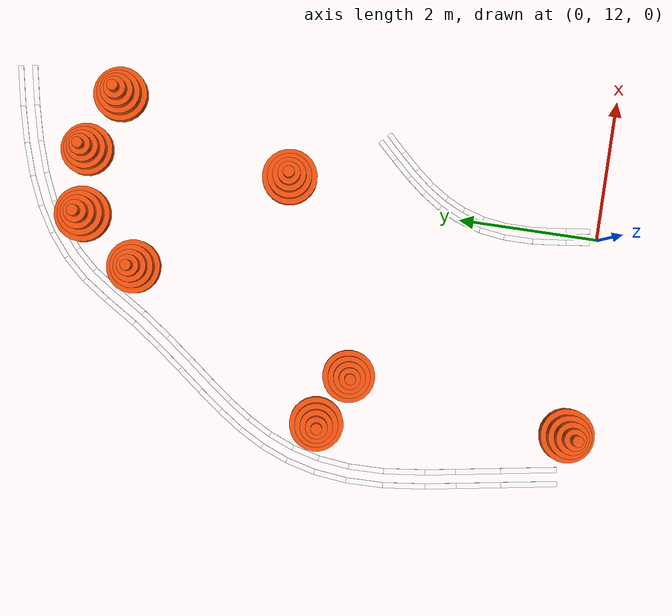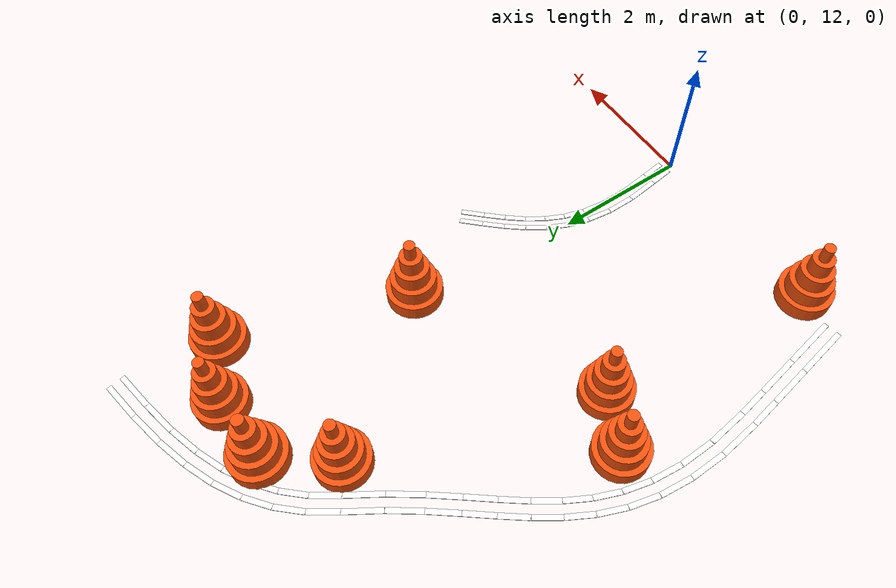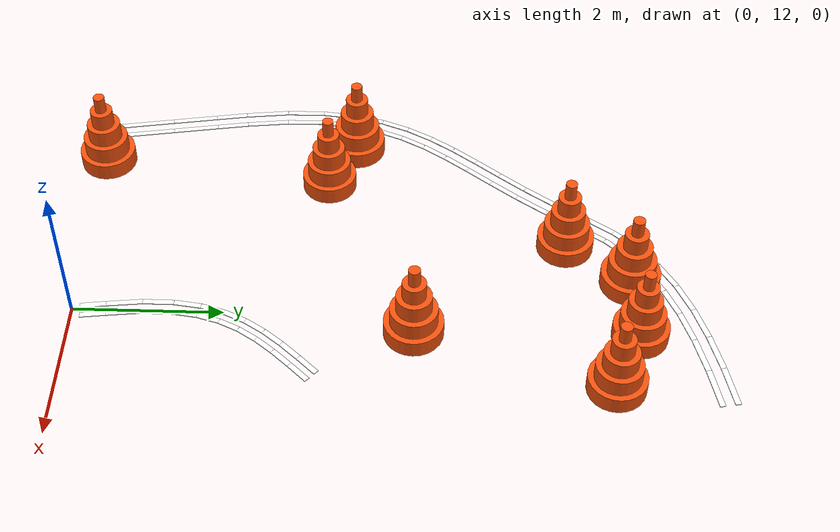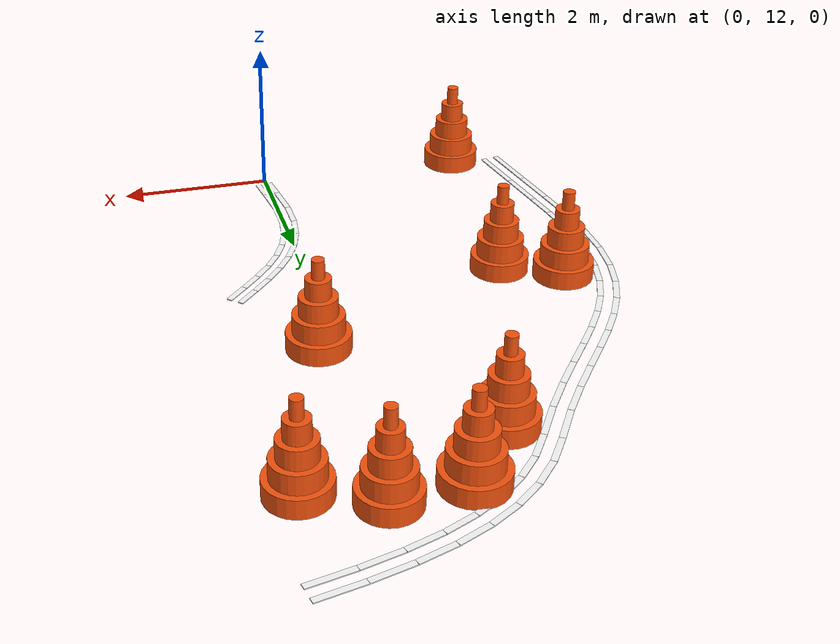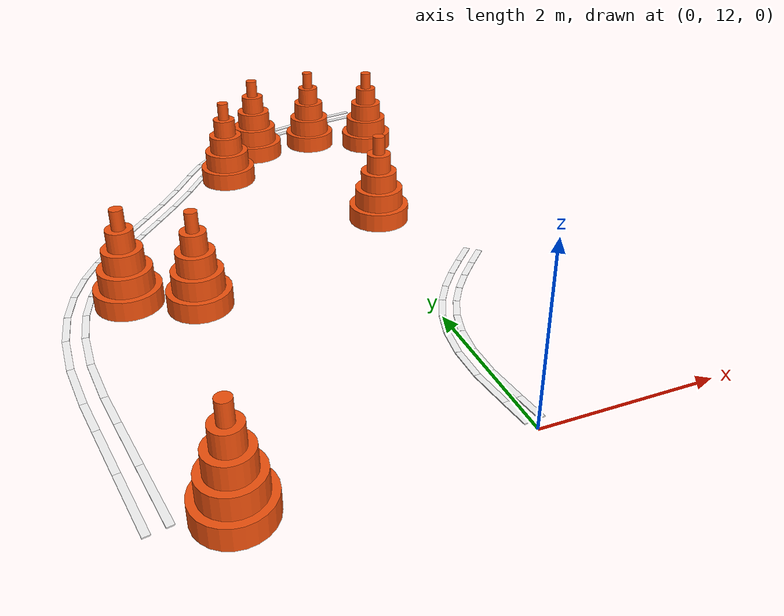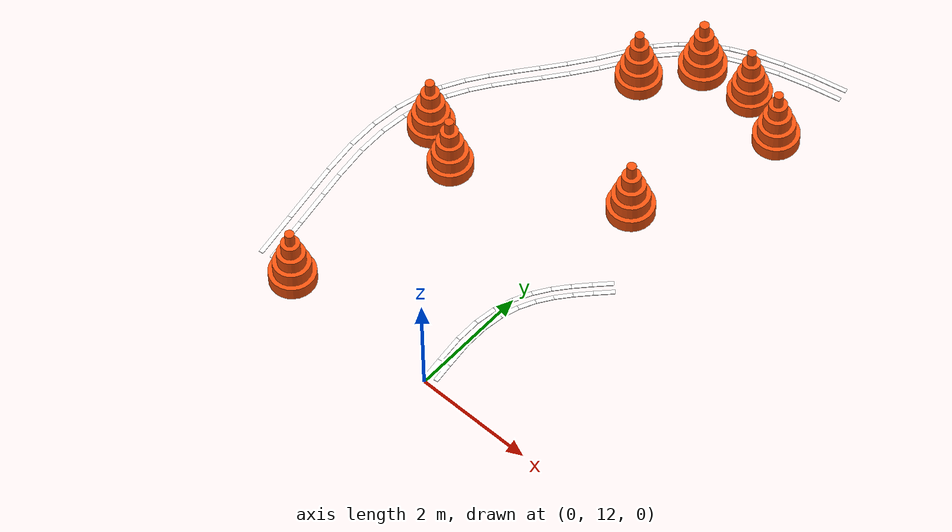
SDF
<sdf version="1.9">
 <world name="igvc_competition">
  <model name="Line_001_0130">
   <static>1</static>
   <pose>1.0309 20.2764 0.011 0 0 -2.937510</pose>
   <link name="link">
    <visual name="visual">
     <geometry><box><size>0.5719 0.0762 0.012</size></box></geometry>
     <material>
      <ambient>0.98 0.98 0.98 1</ambient>
      <diffuse>0.98 0.98 0.98 1</diffuse>
      <specular>0.05 0.05 0.05 1</specular>
      <emissive>0.9 0.9 0.9 1</emissive>
     </material>
    </visual>
   </link>
  </model>
  <model name="Line_001_0131">
   <static>1</static>
   <pose>0.9896 20.4721 0.011 0 0 -2.937470</pose>
   <link name="link">
    <visual name="visual">
     <geometry><box><size>0.5801 0.0762 0.012</size></box></geometry>
     <material>
      <ambient>0.98 0.98 0.98 1</ambient>
      <diffuse>0.98 0.98 0.98 1</diffuse>
      <specular>0.05 0.05 0.05 1</specular>
      <emissive>0.9 0.9 0.9 1</emissive>
     </material>
    </visual>
   </link>
  </model>
  <model name="Line_001_0132">
   <static>1</static>
   <pose>0.5019 20.1538 0.011 0 0 -2.887424</pose>
   <link name="link">
    <visual name="visual">
     <geometry><box><size>0.5146 0.0762 0.012</size></box></geometry>
     <material>
      <ambient>0.98 0.98 0.98 1</ambient>
      <diffuse>0.98 0.98 0.98 1</diffuse>
      <specular>0.05 0.05 0.05 1</specular>
      <emissive>0.9 0.9 0.9 1</emissive>
     </material>
    </visual>
   </link>
  </model>
  <model name="Line_001_0133">
   <static>1</static>
   <pose>0.4506 20.3470 0.011 0 0 -2.887361</pose>
   <link name="link">
    <visual name="visual">
     <geometry><box><size>0.5268 0.0762 0.012</size></box></geometry>
     <material>
      <ambient>0.98 0.98 0.98 1</ambient>
      <diffuse>0.98 0.98 0.98 1</diffuse>
      <specular>0.05 0.05 0.05 1</specular>
      <emissive>0.9 0.9 0.9 1</emissive>
     </material>
    </visual>
   </link>
  </model>
  <model name="Line_001_0134">
   <static>1</static>
   <pose>0.0327 20.0149 0.011 0 0 -2.816711</pose>
   <link name="link">
    <visual name="visual">
     <geometry><box><size>0.4646 0.0762 0.012</size></box></geometry>
     <material>
      <ambient>0.98 0.98 0.98 1</ambient>
      <diffuse>0.98 0.98 0.98 1</diffuse>
      <specular>0.05 0.05 0.05 1</specular>
      <emissive>0.9 0.9 0.9 1</emissive>
     </material>
    </visual>
   </link>
  </model>
  <model name="Line_001_0135">
   <static>1</static>
   <pose>-0.0323 20.2039 0.011 0 0 -2.816227</pose>
   <link name="link">
    <visual name="visual">
     <geometry><box><size>0.4811 0.0762 0.012</size></box></geometry>
     <material>
      <ambient>0.98 0.98 0.98 1</ambient>
      <diffuse>0.98 0.98 0.98 1</diffuse>
      <specular>0.05 0.05 0.05 1</specular>
      <emissive>0.9 0.9 0.9 1</emissive>
     </material>
    </visual>
   </link>
  </model>
  <model name="Line_001_0136">
   <static>1</static>
   <pose>-0.3809 19.8544 0.011 0 0 -2.721355</pose>
   <link name="link">
    <visual name="visual">
     <geometry><box><size>0.4236 0.0762 0.012</size></box></geometry>
     <material>
      <ambient>0.98 0.98 0.98 1</ambient>
      <diffuse>0.98 0.98 0.98 1</diffuse>
      <specular>0.05 0.05 0.05 1</specular>
      <emissive>0.9 0.9 0.9 1</emissive>
     </material>
    </visual>
   </link>
  </model>
  <model name="Line_001_0137">
   <static>1</static>
   <pose>-0.4634 20.0362 0.011 0 0 -2.721178</pose>
   <link name="link">
    <visual name="visual">
     <geometry><box><size>0.4449 0.0762 0.012</size></box></geometry>
     <material>
      <ambient>0.98 0.98 0.98 1</ambient>
      <diffuse>0.98 0.98 0.98 1</diffuse>
      <specular>0.05 0.05 0.05 1</specular>
      <emissive>0.9 0.9 0.9 1</emissive>
     </material>
    </visual>
   </link>
  </model>
  <model name="Line_001_0138">
   <static>1</static>
   <pose>-0.7431 19.6668 0.011 0 0 -2.601783</pose>
   <link name="link">
    <visual name="visual">
     <geometry><box><size>0.3938 0.0762 0.012</size></box></geometry>
     <material>
      <ambient>0.98 0.98 0.98 1</ambient>
      <diffuse>0.98 0.98 0.98 1</diffuse>
      <specular>0.05 0.05 0.05 1</specular>
      <emissive>0.9 0.9 0.9 1</emissive>
     </material>
    </visual>
   </link>
  </model>
  <model name="Line_001_0139">
   <static>1</static>
   <pose>-0.8465 19.8375 0.011 0 0 -2.601500</pose>
   <link name="link">
    <visual name="visual">
     <geometry><box><size>0.4199 0.0762 0.012</size></box></geometry>
     <material>
      <ambient>0.98 0.98 0.98 1</ambient>
      <diffuse>0.98 0.98 0.98 1</diffuse>
      <specular>0.05 0.05 0.05 1</specular>
      <emissive>0.9 0.9 0.9 1</emissive>
     </material>
    </visual>
   </link>
  </model>
  <model name="Line_001_0140">
   <static>1</static>
   <pose>-1.0593 19.4466 0.011 0 0 -2.461902</pose>
   <link name="link">
    <visual name="visual">
     <geometry><box><size>0.3786 0.0762 0.012</size></box></geometry>
     <material>
      <ambient>0.98 0.98 0.98 1</ambient>
      <diffuse>0.98 0.98 0.98 1</diffuse>
      <specular>0.05 0.05 0.05 1</specular>
      <emissive>0.9 0.9 0.9 1</emissive>
     </material>
    </visual>
   </link>
  </model>
  <model name="Line_001_0141">
   <static>1</static>
   <pose>-1.1850 19.6014 0.011 0 0 -2.461716</pose>
   <link name="link">
    <visual name="visual">
     <geometry><box><size>0.4075 0.0762 0.012</size></box></geometry>
     <material>
      <ambient>0.98 0.98 0.98 1</ambient>
      <diffuse>0.98 0.98 0.98 1</diffuse>
      <specular>0.05 0.05 0.05 1</specular>
      <emissive>0.9 0.9 0.9 1</emissive>
     </material>
    </visual>
   </link>
  </model>
  <model name="Line_001_0142">
   <static>1</static>
   <pose>-1.3348 19.1875 0.011 0 0 -2.312259</pose>
   <link name="link">
    <visual name="visual">
     <geometry><box><size>0.3799 0.0762 0.012</size></box></geometry>
     <material>
      <ambient>0.98 0.98 0.98 1</ambient>
      <diffuse>0.98 0.98 0.98 1</diffuse>
      <specular>0.05 0.05 0.05 1</specular>
      <emissive>0.9 0.9 0.9 1</emissive>
     </material>
    </visual>
   </link>
  </model>
  <model name="Line_001_0143">
   <static>1</static>
   <pose>-1.4817 19.3224 0.011 0 0 -2.312473</pose>
   <link name="link">
    <visual name="visual">
     <geometry><box><size>0.4093 0.0762 0.012</size></box></geometry>
     <material>
      <ambient>0.98 0.98 0.98 1</ambient>
      <diffuse>0.98 0.98 0.98 1</diffuse>
      <specular>0.05 0.05 0.05 1</specular>
      <emissive>0.9 0.9 0.9 1</emissive>
     </material>
    </visual>
   </link>
  </model>
  <model name="Line_001_0144">
   <static>1</static>
   <pose>-1.5763 18.8806 0.011 0 0 -2.167054</pose>
   <link name="link">
    <visual name="visual">
     <geometry><box><size>0.4032 0.0762 0.012</size></box></geometry>
     <material>
      <ambient>0.98 0.98 0.98 1</ambient>
      <diffuse>0.98 0.98 0.98 1</diffuse>
      <specular>0.05 0.05 0.05 1</specular>
      <emissive>0.9 0.9 0.9 1</emissive>
     </material>
    </visual>
   </link>
  </model>
  <model name="Line_001_0145">
   <static>1</static>
   <pose>-1.7385 18.9975 0.011 0 0 -2.168350</pose>
   <link name="link">
    <visual name="visual">
     <geometry><box><size>0.4211 0.0762 0.012</size></box></geometry>
     <material>
      <ambient>0.98 0.98 0.98 1</ambient>
      <diffuse>0.98 0.98 0.98 1</diffuse>
      <specular>0.05 0.05 0.05 1</specular>
      <emissive>0.9 0.9 0.9 1</emissive>
     </material>
    </visual>
   </link>
  </model>
  <model name="Line_001_0146">
   <static>1</static>
   <pose>-1.8302 18.4903 0.011 0 0 -2.132908</pose>
   <link name="link">
    <visual name="visual">
     <geometry><box><size>0.5282 0.0762 0.012</size></box></geometry>
     <material>
      <ambient>0.98 0.98 0.98 1</ambient>
      <diffuse>0.98 0.98 0.98 1</diffuse>
      <specular>0.05 0.05 0.05 1</specular>
      <emissive>0.9 0.9 0.9 1</emissive>
     </material>
    </visual>
   </link>
  </model>
  <model name="Line_001_0147">
   <static>1</static>
   <pose>-1.9970 18.6007 0.011 0 0 -2.132599</pose>
   <link name="link">
    <visual name="visual">
     <geometry><box><size>0.5262 0.0762 0.012</size></box></geometry>
     <material>
      <ambient>0.98 0.98 0.98 1</ambient>
      <diffuse>0.98 0.98 0.98 1</diffuse>
      <specular>0.05 0.05 0.05 1</specular>
      <emissive>0.9 0.9 0.9 1</emissive>
     </material>
    </visual>
   </link>
  </model>
  <model name="Line_001_0148">
   <static>1</static>
   <pose>-2.1126 18.0675 0.011 0 0 -2.188171</pose>
   <link name="link">
    <visual name="visual">
     <geometry><box><size>0.4892 0.0762 0.012</size></box></geometry>
     <material>
      <ambient>0.98 0.98 0.98 1</ambient>
      <diffuse>0.98 0.98 0.98 1</diffuse>
      <specular>0.05 0.05 0.05 1</specular>
      <emissive>0.9 0.9 0.9 1</emissive>
     </material>
    </visual>
   </link>
  </model>
  <model name="Line_001_0149">
   <static>1</static>
   <pose>-2.2761 18.1824 0.011 0 0 -2.188333</pose>
   <link name="link">
    <visual name="visual">
     <geometry><box><size>0.4799 0.0762 0.012</size></box></geometry>
     <material>
      <ambient>0.98 0.98 0.98 1</ambient>
      <diffuse>0.98 0.98 0.98 1</diffuse>
      <specular>0.05 0.05 0.05 1</specular>
      <emissive>0.9 0.9 0.9 1</emissive>
     </material>
    </visual>
   </link>
  </model>
  <model name="Line_001_0150">
   <static>1</static>
   <pose>-2.3918 17.6885 0.011 0 0 -2.224955</pose>
   <link name="link">
    <visual name="visual">
     <geometry><box><size>0.4523 0.0762 0.012</size></box></geometry>
     <material>
      <ambient>0.98 0.98 0.98 1</ambient>
      <diffuse>0.98 0.98 0.98 1</diffuse>
      <specular>0.05 0.05 0.05 1</specular>
      <emissive>0.9 0.9 0.9 1</emissive>
     </material>
    </visual>
   </link>
  </model>
  <model name="Line_001_0151">
   <static>1</static>
   <pose>-2.5512 17.8093 0.011 0 0 -2.225116</pose>
   <link name="link">
    <visual name="visual">
     <geometry><box><size>0.4474 0.0762 0.012</size></box></geometry>
     <material>
      <ambient>0.98 0.98 0.98 1</ambient>
      <diffuse>0.98 0.98 0.98 1</diffuse>
      <specular>0.05 0.05 0.05 1</specular>
      <emissive>0.9 0.9 0.9 1</emissive>
     </material>
    </visual>
   </link>
  </model>
  <model name="Line_001_0152">
   <static>1</static>
   <pose>-2.6597 17.3434 0.011 0 0 -2.237019</pose>
   <link name="link">
    <visual name="visual">
     <geometry><box><size>0.4217 0.0762 0.012</size></box></geometry>
     <material>
      <ambient>0.98 0.98 0.98 1</ambient>
      <diffuse>0.98 0.98 0.98 1</diffuse>
      <specular>0.05 0.05 0.05 1</specular>
      <emissive>0.9 0.9 0.9 1</emissive>
     </material>
    </visual>
   </link>
  </model>
  <model name="Line_001_0153">
   <static>1</static>
   <pose>-2.8179 17.4657 0.011 0 0 -2.236885</pose>
   <link name="link">
    <visual name="visual">
     <geometry><box><size>0.4224 0.0762 0.012</size></box></geometry>
     <material>
      <ambient>0.98 0.98 0.98 1</ambient>
      <diffuse>0.98 0.98 0.98 1</diffuse>
      <specular>0.05 0.05 0.05 1</specular>
      <emissive>0.9 0.9 0.9 1</emissive>
     </material>
    </visual>
   </link>
  </model>
  <model name="Line_001_0154">
   <static>1</static>
   <pose>-2.9097 17.0194 0.011 0 0 -2.218179</pose>
   <link name="link">
    <visual name="visual">
     <geometry><box><size>0.3968 0.0762 0.012</size></box></geometry>
     <material>
      <ambient>0.98 0.98 0.98 1</ambient>
      <diffuse>0.98 0.98 0.98 1</diffuse>
      <specular>0.05 0.05 0.05 1</specular>
      <emissive>0.9 0.9 0.9 1</emissive>
     </material>
    </visual>
   </link>
  </model>
  <model name="Line_001_0155">
   <static>1</static>
   <pose>-3.0702 17.1385 0.011 0 0 -2.217861</pose>
   <link name="link">
    <visual name="visual">
     <geometry><box><size>0.4041 0.0762 0.012</size></box></geometry>
     <material>
      <ambient>0.98 0.98 0.98 1</ambient>
      <diffuse>0.98 0.98 0.98 1</diffuse>
      <specular>0.05 0.05 0.05 1</specular>
      <emissive>0.9 0.9 0.9 1</emissive>
     </material>
    </visual>
   </link>
  </model>
  <model name="Line_001_0156">
   <static>1</static>
   <pose>-3.1353 16.7040 0.011 0 0 -2.164141</pose>
   <link name="link">
    <visual name="visual">
     <geometry><box><size>0.3790 0.0762 0.012</size></box></geometry>
     <material>
      <ambient>0.98 0.98 0.98 1</ambient>
      <diffuse>0.98 0.98 0.98 1</diffuse>
      <specular>0.05 0.05 0.05 1</specular>
      <emissive>0.9 0.9 0.9 1</emissive>
     </material>
    </visual>
   </link>
  </model>
  <model name="Line_001_0157">
   <static>1</static>
   <pose>-3.3019 16.8143 0.011 0 0 -2.163877</pose>
   <link name="link">
    <visual name="visual">
     <geometry><box><size>0.3933 0.0762 0.012</size></box></geometry>
     <material>
      <ambient>0.98 0.98 0.98 1</ambient>
      <diffuse>0.98 0.98 0.98 1</diffuse>
      <specular>0.05 0.05 0.05 1</specular>
      <emissive>0.9 0.9 0.9 1</emissive>
     </material>
    </visual>
   </link>
  </model>
  <model name="Line_001_0158">
   <static>1</static>
   <pose>-3.3307 16.3846 0.011 0 0 -2.074514</pose>
   <link name="link">
    <visual name="visual">
     <geometry><box><size>0.3706 0.0762 0.012</size></box></geometry>
     <material>
      <ambient>0.98 0.98 0.98 1</ambient>
      <diffuse>0.98 0.98 0.98 1</diffuse>
      <specular>0.05 0.05 0.05 1</specular>
      <emissive>0.9 0.9 0.9 1</emissive>
     </material>
    </visual>
   </link>
  </model>
  <model name="Line_001_0159">
   <static>1</static>
   <pose>-3.5063 16.4797 0.011 0 0 -2.074423</pose>
   <link name="link">
    <visual name="visual">
     <geometry><box><size>0.3916 0.0762 0.012</size></box></geometry>
     <material>
      <ambient>0.98 0.98 0.98 1</ambient>
      <diffuse>0.98 0.98 0.98 1</diffuse>
      <specular>0.05 0.05 0.05 1</specular>
      <emissive>0.9 0.9 0.9 1</emissive>
     </material>
    </visual>
   </link>
  </model>
  <model name="Line_001_0160">
   <static>1</static>
   <pose>-3.4906 16.0481 0.011 0 0 -1.955354</pose>
   <link name="link">
    <visual name="visual">
     <geometry><box><size>0.3759 0.0762 0.012</size></box></geometry>
     <material>
      <ambient>0.98 0.98 0.98 1</ambient>
      <diffuse>0.98 0.98 0.98 1</diffuse>
      <specular>0.05 0.05 0.05 1</specular>
      <emissive>0.9 0.9 0.9 1</emissive>
     </material>
    </visual>
   </link>
  </model>
  <model name="Line_001_0161">
   <static>1</static>
   <pose>-3.6760 16.1221 0.011 0 0 -1.954912</pose>
   <link name="link">
    <visual name="visual">
     <geometry><box><size>0.4013 0.0762 0.012</size></box></geometry>
     <material>
      <ambient>0.98 0.98 0.98 1</ambient>
      <diffuse>0.98 0.98 0.98 1</diffuse>
      <specular>0.05 0.05 0.05 1</specular>
      <emissive>0.9 0.9 0.9 1</emissive>
     </material>
    </visual>
   </link>
  </model>
  <model name="Line_001_0162">
   <static>1</static>
   <pose>-3.6101 15.6806 0.011 0 0 -1.818877</pose>
   <link name="link">
    <visual name="visual">
     <geometry><box><size>0.3987 0.0762 0.012</size></box></geometry>
     <material>
      <ambient>0.98 0.98 0.98 1</ambient>
      <diffuse>0.98 0.98 0.98 1</diffuse>
      <specular>0.05 0.05 0.05 1</specular>
      <emissive>0.9 0.9 0.9 1</emissive>
     </material>
    </visual>
   </link>
  </model>
  <model name="Line_001_0163">
   <static>1</static>
   <pose>-3.8035 15.7296 0.011 0 0 -1.818849</pose>
   <link name="link">
    <visual name="visual">
     <geometry><box><size>0.4260 0.0762 0.012</size></box></geometry>
     <material>
      <ambient>0.98 0.98 0.98 1</ambient>
      <diffuse>0.98 0.98 0.98 1</diffuse>
      <specular>0.05 0.05 0.05 1</specular>
      <emissive>0.9 0.9 0.9 1</emissive>
     </material>
    </visual>
   </link>
  </model>
  <model name="Line_001_0164">
   <static>1</static>
   <pose>-3.6835 15.2678 0.011 0 0 -1.681928</pose>
   <link name="link">
    <visual name="visual">
     <geometry><box><size>0.4418 0.0762 0.012</size></box></geometry>
     <material>
      <ambient>0.98 0.98 0.98 1</ambient>
      <diffuse>0.98 0.98 0.98 1</diffuse>
      <specular>0.05 0.05 0.05 1</specular>
      <emissive>0.9 0.9 0.9 1</emissive>
     </material>
    </visual>
   </link>
  </model>
  <model name="Line_001_0165">
   <static>1</static>
   <pose>-3.8818 15.2906 0.011 0 0 -1.681949</pose>
   <link name="link">
    <visual name="visual">
     <geometry><box><size>0.4679 0.0762 0.012</size></box></geometry>
     <material>
      <ambient>0.98 0.98 0.98 1</ambient>
      <diffuse>0.98 0.98 0.98 1</diffuse>
      <specular>0.05 0.05 0.05 1</specular>
      <emissive>0.9 0.9 0.9 1</emissive>
     </material>
    </visual>
   </link>
  </model>
  <model name="Line_001_0166">
   <static>1</static>
   <pose>-3.7047 14.7953 0.011 0 0 -1.557754</pose>
   <link name="link">
    <visual name="visual">
     <geometry><box><size>0.5060 0.0762 0.012</size></box></geometry>
     <material>
      <ambient>0.98 0.98 0.98 1</ambient>
      <diffuse>0.98 0.98 0.98 1</diffuse>
      <specular>0.05 0.05 0.05 1</specular>
      <emissive>0.9 0.9 0.9 1</emissive>
     </material>
    </visual>
   </link>
  </model>
  <model name="Line_001_0167">
   <static>1</static>
   <pose>-3.9043 14.7937 0.011 0 0 -1.557938</pose>
   <link name="link">
    <visual name="visual">
     <geometry><box><size>0.5288 0.0762 0.012</size></box></geometry>
     <material>
      <ambient>0.98 0.98 0.98 1</ambient>
      <diffuse>0.98 0.98 0.98 1</diffuse>
      <specular>0.05 0.05 0.05 1</specular>
      <emissive>0.9 0.9 0.9 1</emissive>
     </material>
    </visual>
   </link>
  </model>
  <model name="Line_001_0168">
   <static>1</static>
   <pose>-3.6667 14.2482 0.011 0 0 -1.453332</pose>
   <link name="link">
    <visual name="visual">
     <geometry><box><size>0.5922 0.0762 0.012</size></box></geometry>
     <material>
      <ambient>0.98 0.98 0.98 1</ambient>
      <diffuse>0.98 0.98 0.98 1</diffuse>
      <specular>0.05 0.05 0.05 1</specular>
      <emissive>0.9 0.9 0.9 1</emissive>
     </material>
    </visual>
   </link>
  </model>
  <model name="Line_001_0169">
   <static>1</static>
   <pose>-3.8655 14.2278 0.011 0 0 -1.453938</pose>
   <link name="link">
    <visual name="visual">
     <geometry><box><size>0.6072 0.0762 0.012</size></box></geometry>
     <material>
      <ambient>0.98 0.98 0.98 1</ambient>
      <diffuse>0.98 0.98 0.98 1</diffuse>
      <specular>0.05 0.05 0.05 1</specular>
      <emissive>0.9 0.9 0.9 1</emissive>
     </material>
    </visual>
   </link>
  </model>
  <model name="Line_001_0170">
   <static>1</static>
   <pose>-3.5964 13.7387 0.011 0 0 -1.407040</pose>
   <link name="link">
    <visual name="visual">
     <geometry><box><size>0.4367 0.0762 0.012</size></box></geometry>
     <material>
      <ambient>0.98 0.98 0.98 1</ambient>
      <diffuse>0.98 0.98 0.98 1</diffuse>
      <specular>0.05 0.05 0.05 1</specular>
      <emissive>0.9 0.9 0.9 1</emissive>
     </material>
    </visual>
   </link>
  </model>
  <model name="Line_001_0171">
   <static>1</static>
   <pose>-3.7941 13.7083 0.011 0 0 -1.407025</pose>
   <link name="link">
    <visual name="visual">
     <geometry><box><size>0.4416 0.0762 0.012</size></box></geometry>
     <material>
      <ambient>0.98 0.98 0.98 1</ambient>
      <diffuse>0.98 0.98 0.98 1</diffuse>
      <specular>0.05 0.05 0.05 1</specular>
      <emissive>0.9 0.9 0.9 1</emissive>
     </material>
    </visual>
   </link>
  </model>
  <model name="Line_001_0172">
   <static>1</static>
   <pose>-3.5080 13.2076 0.011 0 0 -1.404954</pose>
   <link name="link">
    <visual name="visual">
     <geometry><box><size>0.6403 0.0762 0.012</size></box></geometry>
     <material>
      <ambient>0.98 0.98 0.98 1</ambient>
      <diffuse>0.98 0.98 0.98 1</diffuse>
      <specular>0.05 0.05 0.05 1</specular>
      <emissive>0.9 0.9 0.9 1</emissive>
     </material>
    </visual>
   </link>
  </model>
  <model name="Line_001_0173">
   <static>1</static>
   <pose>-3.7052 13.1746 0.011 0 0 -1.404878</pose>
   <link name="link">
    <visual name="visual">
     <geometry><box><size>0.6406 0.0762 0.012</size></box></geometry>
     <material>
      <ambient>0.98 0.98 0.98 1</ambient>
      <diffuse>0.98 0.98 0.98 1</diffuse>
      <specular>0.05 0.05 0.05 1</specular>
      <emissive>0.9 0.9 0.9 1</emissive>
     </material>
    </visual>
   </link>
  </model>
  <model name="Line_001_0174">
   <static>1</static>
   <pose>-3.3888 12.4988 0.011 0 0 -1.403812</pose>
   <link name="link">
    <visual name="visual">
     <geometry><box><size>0.7972 0.0762 0.012</size></box></geometry>
     <material>
      <ambient>0.98 0.98 0.98 1</ambient>
      <diffuse>0.98 0.98 0.98 1</diffuse>
      <specular>0.05 0.05 0.05 1</specular>
      <emissive>0.9 0.9 0.9 1</emissive>
     </material>
    </visual>
   </link>
  </model>
  <model name="Line_001_0175">
   <static>1</static>
   <pose>-3.5861 12.4656 0.011 0 0 -1.403978</pose>
   <link name="link">
    <visual name="visual">
     <geometry><box><size>0.7974 0.0762 0.012</size></box></geometry>
     <material>
      <ambient>0.98 0.98 0.98 1</ambient>
      <diffuse>0.98 0.98 0.98 1</diffuse>
      <specular>0.05 0.05 0.05 1</specular>
      <emissive>0.9 0.9 0.9 1</emissive>
     </material>
    </visual>
   </link>
  </model>
  <model name="Line_002_0152">
   <static>1</static>
   <pose>0.9584 15.0429 0.011 0 0 -2.339481</pose>
   <link name="link">
    <visual name="visual">
     <geometry><box><size>0.3385 0.0762 0.012</size></box></geometry>
     <material>
      <ambient>0.98 0.98 0.98 1</ambient>
      <diffuse>0.98 0.98 0.98 1</diffuse>
      <specular>0.05 0.05 0.05 1</specular>
      <emissive>0.9 0.9 0.9 1</emissive>
     </material>
    </visual>
   </link>
  </model>
  <model name="Line_002_0153">
   <static>1</static>
   <pose>0.8389 15.1494 0.011 0 0 -2.339339</pose>
   <link name="link">
    <visual name="visual">
     <geometry><box><size>0.3398 0.0762 0.012</size></box></geometry>
     <material>
      <ambient>0.98 0.98 0.98 1</ambient>
      <diffuse>0.98 0.98 0.98 1</diffuse>
      <specular>0.05 0.05 0.05 1</specular>
      <emissive>0.9 0.9 0.9 1</emissive>
     </material>
    </visual>
   </link>
  </model>
  <model name="Line_002_0154">
   <static>1</static>
   <pose>0.7334 14.8048 0.011 0 0 -2.315305</pose>
   <link name="link">
    <visual name="visual">
     <geometry><box><size>0.3166 0.0762 0.012</size></box></geometry>
     <material>
      <ambient>0.98 0.98 0.98 1</ambient>
      <diffuse>0.98 0.98 0.98 1</diffuse>
      <specular>0.05 0.05 0.05 1</specular>
      <emissive>0.9 0.9 0.9 1</emissive>
     </material>
    </visual>
   </link>
  </model>
  <model name="Line_002_0155">
   <static>1</static>
   <pose>0.6112 14.9082 0.011 0 0 -2.315098</pose>
   <link name="link">
    <visual name="visual">
     <geometry><box><size>0.3236 0.0762 0.012</size></box></geometry>
     <material>
      <ambient>0.98 0.98 0.98 1</ambient>
      <diffuse>0.98 0.98 0.98 1</diffuse>
      <specular>0.05 0.05 0.05 1</specular>
      <emissive>0.9 0.9 0.9 1</emissive>
     </material>
    </visual>
   </link>
  </model>
  <model name="Line_002_0156">
   <static>1</static>
   <pose>0.5317 14.5722 0.011 0 0 -2.253307</pose>
   <link name="link">
    <visual name="visual">
     <geometry><box><size>0.2995 0.0762 0.012</size></box></geometry>
     <material>
      <ambient>0.98 0.98 0.98 1</ambient>
      <diffuse>0.98 0.98 0.98 1</diffuse>
      <specular>0.05 0.05 0.05 1</specular>
      <emissive>0.9 0.9 0.9 1</emissive>
     </material>
    </visual>
   </link>
  </model>
  <model name="Line_002_0157">
   <static>1</static>
   <pose>0.4031 14.6679 0.011 0 0 -2.253082</pose>
   <link name="link">
    <visual name="visual">
     <geometry><box><size>0.3126 0.0762 0.012</size></box></geometry>
     <material>
      <ambient>0.98 0.98 0.98 1</ambient>
      <diffuse>0.98 0.98 0.98 1</diffuse>
      <specular>0.05 0.05 0.05 1</specular>
      <emissive>0.9 0.9 0.9 1</emissive>
     </material>
    </visual>
   </link>
  </model>
  <model name="Line_002_0158">
   <static>1</static>
   <pose>0.3578 14.3350 0.011 0 0 -2.152383</pose>
   <link name="link">
    <visual name="visual">
     <geometry><box><size>0.2896 0.0762 0.012</size></box></geometry>
     <material>
      <ambient>0.98 0.98 0.98 1</ambient>
      <diffuse>0.98 0.98 0.98 1</diffuse>
      <specular>0.05 0.05 0.05 1</specular>
      <emissive>0.9 0.9 0.9 1</emissive>
     </material>
    </visual>
   </link>
  </model>
  <model name="Line_002_0159">
   <static>1</static>
   <pose>0.2198 14.4177 0.011 0 0 -2.151697</pose>
   <link name="link">
    <visual name="visual">
     <geometry><box><size>0.3085 0.0762 0.012</size></box></geometry>
     <material>
      <ambient>0.98 0.98 0.98 1</ambient>
      <diffuse>0.98 0.98 0.98 1</diffuse>
      <specular>0.05 0.05 0.05 1</specular>
      <emissive>0.9 0.9 0.9 1</emissive>
     </material>
    </visual>
   </link>
  </model>
  <model name="Line_002_0160">
   <static>1</static>
   <pose>0.2154 14.0827 0.011 0 0 -2.016929</pose>
   <link name="link">
    <visual name="visual">
     <geometry><box><size>0.2911 0.0762 0.012</size></box></geometry>
     <material>
      <ambient>0.98 0.98 0.98 1</ambient>
      <diffuse>0.98 0.98 0.98 1</diffuse>
      <specular>0.05 0.05 0.05 1</specular>
      <emissive>0.9 0.9 0.9 1</emissive>
     </material>
    </visual>
   </link>
  </model>
  <model name="Line_002_0161">
   <static>1</static>
   <pose>0.0675 14.1471 0.011 0 0 -2.016777</pose>
   <link name="link">
    <visual name="visual">
     <geometry><box><size>0.3139 0.0762 0.012</size></box></geometry>
     <material>
      <ambient>0.98 0.98 0.98 1</ambient>
      <diffuse>0.98 0.98 0.98 1</diffuse>
      <specular>0.05 0.05 0.05 1</specular>
      <emissive>0.9 0.9 0.9 1</emissive>
     </material>
    </visual>
   </link>
  </model>
  <model name="Line_002_0162">
   <static>1</static>
   <pose>0.1084 13.8041 0.011 0 0 -1.862222</pose>
   <link name="link">
    <visual name="visual">
     <geometry><box><size>0.3077 0.0762 0.012</size></box></geometry>
     <material>
      <ambient>0.98 0.98 0.98 1</ambient>
      <diffuse>0.98 0.98 0.98 1</diffuse>
      <specular>0.05 0.05 0.05 1</specular>
      <emissive>0.9 0.9 0.9 1</emissive>
     </material>
    </visual>
   </link>
  </model>
  <model name="Line_002_0163">
   <static>1</static>
   <pose>-0.0479 13.8466 0.011 0 0 -1.862138</pose>
   <link name="link">
    <visual name="visual">
     <geometry><box><size>0.3318 0.0762 0.012</size></box></geometry>
     <material>
      <ambient>0.98 0.98 0.98 1</ambient>
      <diffuse>0.98 0.98 0.98 1</diffuse>
      <specular>0.05 0.05 0.05 1</specular>
      <emissive>0.9 0.9 0.9 1</emissive>
     </material>
    </visual>
   </link>
  </model>
  <model name="Line_002_0164">
   <static>1</static>
   <pose>0.0408 13.4872 0.011 0 0 -1.707693</pose>
   <link name="link">
    <visual name="visual">
     <geometry><box><size>0.3422 0.0762 0.012</size></box></geometry>
     <material>
      <ambient>0.98 0.98 0.98 1</ambient>
      <diffuse>0.98 0.98 0.98 1</diffuse>
      <specular>0.05 0.05 0.05 1</specular>
      <emissive>0.9 0.9 0.9 1</emissive>
     </material>
    </visual>
   </link>
  </model>
  <model name="Line_002_0165">
   <static>1</static>
   <pose>-0.1205 13.5071 0.011 0 0 -1.708078</pose>
   <link name="link">
    <visual name="visual">
     <geometry><box><size>0.3646 0.0762 0.012</size></box></geometry>
     <material>
      <ambient>0.98 0.98 0.98 1</ambient>
      <diffuse>0.98 0.98 0.98 1</diffuse>
      <specular>0.05 0.05 0.05 1</specular>
      <emissive>0.9 0.9 0.9 1</emissive>
     </material>
    </visual>
   </link>
  </model>
  <model name="Line_002_0166">
   <static>1</static>
   <pose>0.0176 13.1204 0.011 0 0 -1.570290</pose>
   <link name="link">
    <visual name="visual">
     <geometry><box><size>0.3947 0.0762 0.012</size></box></geometry>
     <material>
      <ambient>0.98 0.98 0.98 1</ambient>
      <diffuse>0.98 0.98 0.98 1</diffuse>
      <specular>0.05 0.05 0.05 1</specular>
      <emissive>0.9 0.9 0.9 1</emissive>
     </material>
    </visual>
   </link>
  </model>
  <model name="Line_002_0167">
   <static>1</static>
   <pose>-0.1453 13.1195 0.011 0 0 -1.570313</pose>
   <link name="link">
    <visual name="visual">
     <geometry><box><size>0.4140 0.0762 0.012</size></box></geometry>
     <material>
      <ambient>0.98 0.98 0.98 1</ambient>
      <diffuse>0.98 0.98 0.98 1</diffuse>
      <specular>0.05 0.05 0.05 1</specular>
      <emissive>0.9 0.9 0.9 1</emissive>
     </material>
    </visual>
   </link>
  </model>
  <model name="Line_002_0168">
   <static>1</static>
   <pose>0.0443 12.6909 0.011 0 0 -1.456688</pose>
   <link name="link">
    <visual name="visual">
     <geometry><box><size>0.4672 0.0762 0.012</size></box></geometry>
     <material>
      <ambient>0.98 0.98 0.98 1</ambient>
      <diffuse>0.98 0.98 0.98 1</diffuse>
      <specular>0.05 0.05 0.05 1</specular>
      <emissive>0.9 0.9 0.9 1</emissive>
     </material>
    </visual>
   </link>
  </model>
  <model name="Line_002_0169">
   <static>1</static>
   <pose>-0.1182 12.6755 0.011 0 0 -1.457338</pose>
   <link name="link">
    <visual name="visual">
     <geometry><box><size>0.4770 0.0762 0.012</size></box></geometry>
     <material>
      <ambient>0.98 0.98 0.98 1</ambient>
      <diffuse>0.98 0.98 0.98 1</diffuse>
      <specular>0.05 0.05 0.05 1</specular>
      <emissive>0.9 0.9 0.9 1</emissive>
     </material>
    </visual>
   </link>
  </model>
  <model name="Line_002_0170">
   <static>1</static>
   <pose>0.0928 12.2892 0.011 0 0 -1.442380</pose>
   <link name="link">
    <visual name="visual">
     <geometry><box><size>0.3420 0.0762 0.012</size></box></geometry>
     <material>
      <ambient>0.98 0.98 0.98 1</ambient>
      <diffuse>0.98 0.98 0.98 1</diffuse>
      <specular>0.05 0.05 0.05 1</specular>
      <emissive>0.9 0.9 0.9 1</emissive>
     </material>
    </visual>
   </link>
  </model>
  <model name="Line_002_0171">
   <static>1</static>
   <pose>-0.0694 12.2696 0.011 0 0 -1.442473</pose>
   <link name="link">
    <visual name="visual">
     <geometry><box><size>0.3407 0.0762 0.012</size></box></geometry>
     <material>
      <ambient>0.98 0.98 0.98 1</ambient>
      <diffuse>0.98 0.98 0.98 1</diffuse>
      <specular>0.05 0.05 0.05 1</specular>
      <emissive>0.9 0.9 0.9 1</emissive>
     </material>
    </visual>
   </link>
  </model>
  <model name="Cones_061">
   <static>1</static>
   <pose>1.0602 19.0343 0 0 0 0</pose>
   <link name="link">
    <collision name="collision">
     <pose>0 0 0.5985 0 0 0</pose>
     <geometry><cylinder><radius>0.3831</radius><length>1.1969</length></cylinder></geometry>
    </collision>
    <visual name="visual_0">
     <pose>0 0 0.1197 0 0 0</pose>
     <geometry><cylinder><radius>0.3831</radius><length>0.2394</length></cylinder></geometry>
     <material>
      <ambient>0.95 0.32 0.05 1.0</ambient>
      <diffuse>0.95 0.32 0.05 1.0</diffuse>
      <specular>0.05 0.05 0.05 1</specular>
     </material>
    </visual>
    <visual name="visual_1">
     <pose>0 0 0.3591 0 0 0</pose>
     <geometry><cylinder><radius>0.3065</radius><length>0.2394</length></cylinder></geometry>
     <material>
      <ambient>0.95 0.32 0.05 1.0</ambient>
      <diffuse>0.95 0.32 0.05 1.0</diffuse>
      <specular>0.05 0.05 0.05 1</specular>
     </material>
    </visual>
    <visual name="visual_2">
     <pose>0 0 0.5985 0 0 0</pose>
     <geometry><cylinder><radius>0.2299</radius><length>0.2394</length></cylinder></geometry>
     <material>
      <ambient>0.95 0.32 0.05 1.0</ambient>
      <diffuse>0.95 0.32 0.05 1.0</diffuse>
      <specular>0.05 0.05 0.05 1</specular>
     </material>
    </visual>
    <visual name="visual_3">
     <pose>0 0 0.8378 0 0 0</pose>
     <geometry><cylinder><radius>0.1532</radius><length>0.2394</length></cylinder></geometry>
     <material>
      <ambient>0.95 0.32 0.05 1.0</ambient>
      <diffuse>0.95 0.32 0.05 1.0</diffuse>
      <specular>0.05 0.05 0.05 1</specular>
     </material>
    </visual>
    <visual name="visual_4">
     <pose>0 0 1.0772 0 0 0</pose>
     <geometry><cylinder><radius>0.0766</radius><length>0.2394</length></cylinder></geometry>
     <material>
      <ambient>0.95 0.32 0.05 1.0</ambient>
      <diffuse>0.95 0.32 0.05 1.0</diffuse>
      <specular>0.05 0.05 0.05 1</specular>
     </material>
    </visual>
   </link>
  </model>
  <model name="Cones_062">
   <static>1</static>
   <pose>0.2149 19.3900 0 0 0 0</pose>
   <link name="link">
    <collision name="collision">
     <pose>0 0 0.5985 0 0 0</pose>
     <geometry><cylinder><radius>0.3689</radius><length>1.1969</length></cylinder></geometry>
    </collision>
    <visual name="visual_0">
     <pose>0 0 0.1197 0 0 0</pose>
     <geometry><cylinder><radius>0.3689</radius><length>0.2394</length></cylinder></geometry>
     <material>
      <ambient>0.95 0.32 0.05 1.0</ambient>
      <diffuse>0.95 0.32 0.05 1.0</diffuse>
      <specular>0.05 0.05 0.05 1</specular>
     </material>
    </visual>
    <visual name="visual_1">
     <pose>0 0 0.3591 0 0 0</pose>
     <geometry><cylinder><radius>0.2951</radius><length>0.2394</length></cylinder></geometry>
     <material>
      <ambient>0.95 0.32 0.05 1.0</ambient>
      <diffuse>0.95 0.32 0.05 1.0</diffuse>
      <specular>0.05 0.05 0.05 1</specular>
     </material>
    </visual>
    <visual name="visual_2">
     <pose>0 0 0.5985 0 0 0</pose>
     <geometry><cylinder><radius>0.2213</radius><length>0.2394</length></cylinder></geometry>
     <material>
      <ambient>0.95 0.32 0.05 1.0</ambient>
      <diffuse>0.95 0.32 0.05 1.0</diffuse>
      <specular>0.05 0.05 0.05 1</specular>
     </material>
    </visual>
    <visual name="visual_3">
     <pose>0 0 0.8378 0 0 0</pose>
     <geometry><cylinder><radius>0.1476</radius><length>0.2394</length></cylinder></geometry>
     <material>
      <ambient>0.95 0.32 0.05 1.0</ambient>
      <diffuse>0.95 0.32 0.05 1.0</diffuse>
      <specular>0.05 0.05 0.05 1</specular>
     </material>
    </visual>
    <visual name="visual_4">
     <pose>0 0 1.0772 0 0 0</pose>
     <geometry><cylinder><radius>0.0738</radius><length>0.2394</length></cylinder></geometry>
     <material>
      <ambient>0.95 0.32 0.05 1.0</ambient>
      <diffuse>0.95 0.32 0.05 1.0</diffuse>
      <specular>0.05 0.05 0.05 1</specular>
     </material>
    </visual>
   </link>
  </model>
  <model name="Cones_063">
   <static>1</static>
   <pose>-0.7042 19.3198 0 0 0 0</pose>
   <link name="link">
    <collision name="collision">
     <pose>0 0 0.5985 0 0 0</pose>
     <geometry><cylinder><radius>0.3974</radius><length>1.1969</length></cylinder></geometry>
    </collision>
    <visual name="visual_0">
     <pose>0 0 0.1197 0 0 0</pose>
     <geometry><cylinder><radius>0.3974</radius><length>0.2394</length></cylinder></geometry>
     <material>
      <ambient>0.95 0.32 0.05 1.0</ambient>
      <diffuse>0.95 0.32 0.05 1.0</diffuse>
      <specular>0.05 0.05 0.05 1</specular>
     </material>
    </visual>
    <visual name="visual_1">
     <pose>0 0 0.3591 0 0 0</pose>
     <geometry><cylinder><radius>0.3179</radius><length>0.2394</length></cylinder></geometry>
     <material>
      <ambient>0.95 0.32 0.05 1.0</ambient>
      <diffuse>0.95 0.32 0.05 1.0</diffuse>
      <specular>0.05 0.05 0.05 1</specular>
     </material>
    </visual>
    <visual name="visual_2">
     <pose>0 0 0.5985 0 0 0</pose>
     <geometry><cylinder><radius>0.2384</radius><length>0.2394</length></cylinder></geometry>
     <material>
      <ambient>0.95 0.32 0.05 1.0</ambient>
      <diffuse>0.95 0.32 0.05 1.0</diffuse>
      <specular>0.05 0.05 0.05 1</specular>
     </material>
    </visual>
    <visual name="visual_3">
     <pose>0 0 0.8378 0 0 0</pose>
     <geometry><cylinder><radius>0.1590</radius><length>0.2394</length></cylinder></geometry>
     <material>
      <ambient>0.95 0.32 0.05 1.0</ambient>
      <diffuse>0.95 0.32 0.05 1.0</diffuse>
      <specular>0.05 0.05 0.05 1</specular>
     </material>
    </visual>
    <visual name="visual_4">
     <pose>0 0 1.0772 0 0 0</pose>
     <geometry><cylinder><radius>0.0795</radius><length>0.2394</length></cylinder></geometry>
     <material>
      <ambient>0.95 0.32 0.05 1.0</ambient>
      <diffuse>0.95 0.32 0.05 1.0</diffuse>
      <specular>0.05 0.05 0.05 1</specular>
     </material>
    </visual>
   </link>
  </model>
  <model name="Cones_064">
   <static>1</static>
   <pose>-2.4319 15.2375 0 0 0 0</pose>
   <link name="link">
    <collision name="collision">
     <pose>0 0 0.5985 0 0 0</pose>
     <geometry><cylinder><radius>0.3726</radius><length>1.1969</length></cylinder></geometry>
    </collision>
    <visual name="visual_0">
     <pose>0 0 0.1197 0 0 0</pose>
     <geometry><cylinder><radius>0.3726</radius><length>0.2394</length></cylinder></geometry>
     <material>
      <ambient>0.95 0.32 0.05 1.0</ambient>
      <diffuse>0.95 0.32 0.05 1.0</diffuse>
      <specular>0.05 0.05 0.05 1</specular>
     </material>
    </visual>
    <visual name="visual_1">
     <pose>0 0 0.3591 0 0 0</pose>
     <geometry><cylinder><radius>0.2981</radius><length>0.2394</length></cylinder></geometry>
     <material>
      <ambient>0.95 0.32 0.05 1.0</ambient>
      <diffuse>0.95 0.32 0.05 1.0</diffuse>
      <specular>0.05 0.05 0.05 1</specular>
     </material>
    </visual>
    <visual name="visual_2">
     <pose>0 0 0.5985 0 0 0</pose>
     <geometry><cylinder><radius>0.2236</radius><length>0.2394</length></cylinder></geometry>
     <material>
      <ambient>0.95 0.32 0.05 1.0</ambient>
      <diffuse>0.95 0.32 0.05 1.0</diffuse>
      <specular>0.05 0.05 0.05 1</specular>
     </material>
    </visual>
    <visual name="visual_3">
     <pose>0 0 0.8378 0 0 0</pose>
     <geometry><cylinder><radius>0.1490</radius><length>0.2394</length></cylinder></geometry>
     <material>
      <ambient>0.95 0.32 0.05 1.0</ambient>
      <diffuse>0.95 0.32 0.05 1.0</diffuse>
      <specular>0.05 0.05 0.05 1</specular>
     </material>
    </visual>
    <visual name="visual_4">
     <pose>0 0 1.0772 0 0 0</pose>
     <geometry><cylinder><radius>0.0745</radius><length>0.2394</length></cylinder></geometry>
     <material>
      <ambient>0.95 0.32 0.05 1.0</ambient>
      <diffuse>0.95 0.32 0.05 1.0</diffuse>
      <specular>0.05 0.05 0.05 1</specular>
     </material>
    </visual>
   </link>
  </model>
  <model name="Cones_065">
   <static>1</static>
   <pose>-3.1660 15.5943 0 0 0 0</pose>
   <link name="link">
    <collision name="collision">
     <pose>0 0 0.5985 0 0 0</pose>
     <geometry><cylinder><radius>0.3849</radius><length>1.1969</length></cylinder></geometry>
    </collision>
    <visual name="visual_0">
     <pose>0 0 0.1197 0 0 0</pose>
     <geometry><cylinder><radius>0.3849</radius><length>0.2394</length></cylinder></geometry>
     <material>
      <ambient>0.95 0.32 0.05 1.0</ambient>
      <diffuse>0.95 0.32 0.05 1.0</diffuse>
      <specular>0.05 0.05 0.05 1</specular>
     </material>
    </visual>
    <visual name="visual_1">
     <pose>0 0 0.3591 0 0 0</pose>
     <geometry><cylinder><radius>0.3079</radius><length>0.2394</length></cylinder></geometry>
     <material>
      <ambient>0.95 0.32 0.05 1.0</ambient>
      <diffuse>0.95 0.32 0.05 1.0</diffuse>
      <specular>0.05 0.05 0.05 1</specular>
     </material>
    </visual>
    <visual name="visual_2">
     <pose>0 0 0.5985 0 0 0</pose>
     <geometry><cylinder><radius>0.2309</radius><length>0.2394</length></cylinder></geometry>
     <material>
      <ambient>0.95 0.32 0.05 1.0</ambient>
      <diffuse>0.95 0.32 0.05 1.0</diffuse>
      <specular>0.05 0.05 0.05 1</specular>
     </material>
    </visual>
    <visual name="visual_3">
     <pose>0 0 0.8378 0 0 0</pose>
     <geometry><cylinder><radius>0.1540</radius><length>0.2394</length></cylinder></geometry>
     <material>
      <ambient>0.95 0.32 0.05 1.0</ambient>
      <diffuse>0.95 0.32 0.05 1.0</diffuse>
      <specular>0.05 0.05 0.05 1</specular>
     </material>
    </visual>
    <visual name="visual_4">
     <pose>0 0 1.0772 0 0 0</pose>
     <geometry><cylinder><radius>0.0770</radius><length>0.2394</length></cylinder></geometry>
     <material>
      <ambient>0.95 0.32 0.05 1.0</ambient>
      <diffuse>0.95 0.32 0.05 1.0</diffuse>
      <specular>0.05 0.05 0.05 1</specular>
     </material>
    </visual>
   </link>
  </model>
  <model name="Cones_066">
   <static>1</static>
   <pose>0.2458 16.4799 0 0 0 0</pose>
   <link name="link">
    <collision name="collision">
     <pose>0 0 0.5985 0 0 0</pose>
     <geometry><cylinder><radius>0.3945</radius><length>1.1969</length></cylinder></geometry>
    </collision>
    <visual name="visual_0">
     <pose>0 0 0.1197 0 0 0</pose>
     <geometry><cylinder><radius>0.3945</radius><length>0.2394</length></cylinder></geometry>
     <material>
      <ambient>0.95 0.32 0.05 1.0</ambient>
      <diffuse>0.95 0.32 0.05 1.0</diffuse>
      <specular>0.05 0.05 0.05 1</specular>
     </material>
    </visual>
    <visual name="visual_1">
     <pose>0 0 0.3591 0 0 0</pose>
     <geometry><cylinder><radius>0.3156</radius><length>0.2394</length></cylinder></geometry>
     <material>
      <ambient>0.95 0.32 0.05 1.0</ambient>
      <diffuse>0.95 0.32 0.05 1.0</diffuse>
      <specular>0.05 0.05 0.05 1</specular>
     </material>
    </visual>
    <visual name="visual_2">
     <pose>0 0 0.5985 0 0 0</pose>
     <geometry><cylinder><radius>0.2367</radius><length>0.2394</length></cylinder></geometry>
     <material>
      <ambient>0.95 0.32 0.05 1.0</ambient>
      <diffuse>0.95 0.32 0.05 1.0</diffuse>
      <specular>0.05 0.05 0.05 1</specular>
     </material>
    </visual>
    <visual name="visual_3">
     <pose>0 0 0.8378 0 0 0</pose>
     <geometry><cylinder><radius>0.1578</radius><length>0.2394</length></cylinder></geometry>
     <material>
      <ambient>0.95 0.32 0.05 1.0</ambient>
      <diffuse>0.95 0.32 0.05 1.0</diffuse>
      <specular>0.05 0.05 0.05 1</specular>
     </material>
    </visual>
    <visual name="visual_4">
     <pose>0 0 1.0772 0 0 0</pose>
     <geometry><cylinder><radius>0.0789</radius><length>0.2394</length></cylinder></geometry>
     <material>
      <ambient>0.95 0.32 0.05 1.0</ambient>
      <diffuse>0.95 0.32 0.05 1.0</diffuse>
      <specular>0.05 0.05 0.05 1</specular>
     </material>
    </visual>
   </link>
  </model>
  <model name="Cones_067">
   <static>1</static>
   <pose>-1.3386 18.4906 0 0 0 0</pose>
   <link name="link">
    <collision name="collision">
     <pose>0 0 0.5985 0 0 0</pose>
     <geometry><cylinder><radius>0.3821</radius><length>1.1969</length></cylinder></geometry>
    </collision>
    <visual name="visual_0">
     <pose>0 0 0.1197 0 0 0</pose>
     <geometry><cylinder><radius>0.3821</radius><length>0.2394</length></cylinder></geometry>
     <material>
      <ambient>0.95 0.32 0.05 1.0</ambient>
      <diffuse>0.95 0.32 0.05 1.0</diffuse>
      <specular>0.05 0.05 0.05 1</specular>
     </material>
    </visual>
    <visual name="visual_1">
     <pose>0 0 0.3591 0 0 0</pose>
     <geometry><cylinder><radius>0.3057</radius><length>0.2394</length></cylinder></geometry>
     <material>
      <ambient>0.95 0.32 0.05 1.0</ambient>
      <diffuse>0.95 0.32 0.05 1.0</diffuse>
      <specular>0.05 0.05 0.05 1</specular>
     </material>
    </visual>
    <visual name="visual_2">
     <pose>0 0 0.5985 0 0 0</pose>
     <geometry><cylinder><radius>0.2293</radius><length>0.2394</length></cylinder></geometry>
     <material>
      <ambient>0.95 0.32 0.05 1.0</ambient>
      <diffuse>0.95 0.32 0.05 1.0</diffuse>
      <specular>0.05 0.05 0.05 1</specular>
     </material>
    </visual>
    <visual name="visual_3">
     <pose>0 0 0.8378 0 0 0</pose>
     <geometry><cylinder><radius>0.1528</radius><length>0.2394</length></cylinder></geometry>
     <material>
      <ambient>0.95 0.32 0.05 1.0</ambient>
      <diffuse>0.95 0.32 0.05 1.0</diffuse>
      <specular>0.05 0.05 0.05 1</specular>
     </material>
    </visual>
    <visual name="visual_4">
     <pose>0 0 1.0772 0 0 0</pose>
     <geometry><cylinder><radius>0.0764</radius><length>0.2394</length></cylinder></geometry>
     <material>
      <ambient>0.95 0.32 0.05 1.0</ambient>
      <diffuse>0.95 0.32 0.05 1.0</diffuse>
      <specular>0.05 0.05 0.05 1</specular>
     </material>
    </visual>
   </link>
  </model>
  <model name="Cones_068">
   <static>1</static>
   <pose>-2.8116 12.0508 0 0 0 0</pose>
   <link name="link">
    <collision name="collision">
     <pose>0 0 0.5985 0 0 0</pose>
     <geometry><cylinder><radius>0.3849</radius><length>1.1969</length></cylinder></geometry>
    </collision>
    <visual name="visual_0">
     <pose>0 0 0.1197 0 0 0</pose>
     <geometry><cylinder><radius>0.3849</radius><length>0.2394</length></cylinder></geometry>
     <material>
      <ambient>0.95 0.32 0.05 1.0</ambient>
      <diffuse>0.95 0.32 0.05 1.0</diffuse>
      <specular>0.05 0.05 0.05 1</specular>
     </material>
    </visual>
    <visual name="visual_1">
     <pose>0 0 0.3591 0 0 0</pose>
     <geometry><cylinder><radius>0.3079</radius><length>0.2394</length></cylinder></geometry>
     <material>
      <ambient>0.95 0.32 0.05 1.0</ambient>
      <diffuse>0.95 0.32 0.05 1.0</diffuse>
      <specular>0.05 0.05 0.05 1</specular>
     </material>
    </visual>
    <visual name="visual_2">
     <pose>0 0 0.5985 0 0 0</pose>
     <geometry><cylinder><radius>0.2309</radius><length>0.2394</length></cylinder></geometry>
     <material>
      <ambient>0.95 0.32 0.05 1.0</ambient>
      <diffuse>0.95 0.32 0.05 1.0</diffuse>
      <specular>0.05 0.05 0.05 1</specular>
     </material>
    </visual>
    <visual name="visual_3">
     <pose>0 0 0.8378 0 0 0</pose>
     <geometry><cylinder><radius>0.1540</radius><length>0.2394</length></cylinder></geometry>
     <material>
      <ambient>0.95 0.32 0.05 1.0</ambient>
      <diffuse>0.95 0.32 0.05 1.0</diffuse>
      <specular>0.05 0.05 0.05 1</specular>
     </material>
    </visual>
    <visual name="visual_4">
     <pose>0 0 1.0772 0 0 0</pose>
     <geometry><cylinder><radius>0.0770</radius><length>0.2394</length></cylinder></geometry>
     <material>
      <ambient>0.95 0.32 0.05 1.0</ambient>
      <diffuse>0.95 0.32 0.05 1.0</diffuse>
      <specular>0.05 0.05 0.05 1</specular>
     </material>
    </visual>
   </link>
  </model>
 </world>
</sdf>
